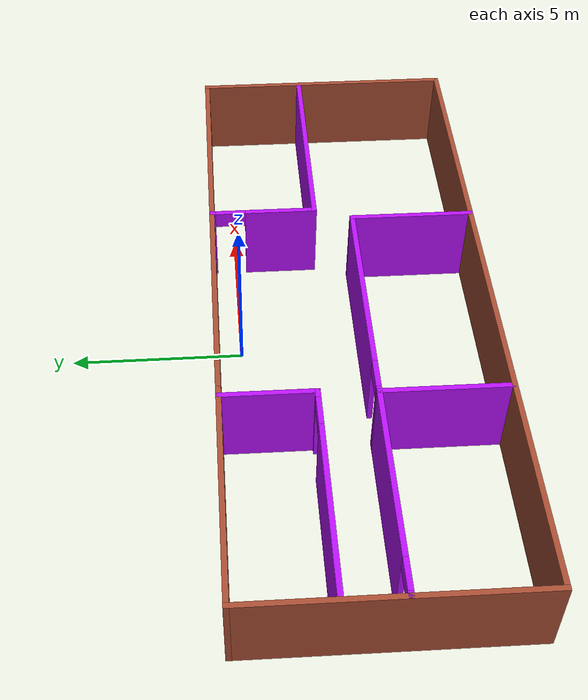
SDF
<?xml version='1.0'?>
<sdf version='1.6'>
  <model name='myroom'>
    <pose frame=''>0.194113 -3.19941 0 0 -0 0</pose>
    <link name='Wall_1'>
      <collision name='Wall_1_Collision'>
        <geometry>
          <box>
            <size>8 0.15 2.5</size>
          </box>
        </geometry>
        <pose frame=''>0 0 1.25 0 -0 0</pose>
      </collision>
      <visual name='Wall_1_Visual'>
        <pose frame=''>0 0 1.25 0 -0 0</pose>
        <geometry>
          <box>
            <size>8 0.15 2.5</size>
          </box>
        </geometry>
        <material>
          <script>
            <uri>file://media/materials/scripts/gazebo.material</uri>
            <name>Gazebo/Bricks</name>
          </script>
          <ambient>1 1 1 1</ambient>
        </material>
        <meta>
          <layer>0</layer>
        </meta>
      </visual>
      <pose frame=''>-9.925 0 0 0 0 -1.5708</pose>
    </link>
    <link name='Wall_10'>
      <pose frame=''>-6.78002 1.30489 0 0 -0 3.14159</pose>
      <visual name='Wall_10_Visual_0'>
        <pose frame=''>-2.98063 0 1.25 0 -0 0</pose>
        <geometry>
          <box>
            <size>0.288748 0.15 2.5</size>
          </box>
        </geometry>
        <material>
          <script>
            <uri>file://media/materials/scripts/gazebo.material</uri>
            <name>Gazebo/Grey</name>
          </script>
          <ambient>0.721569 0.0627451 1 1</ambient>
        </material>
        <meta>
          <layer>0</layer>
        </meta>
      </visual>
      <collision name='Wall_10_Collision_0'>
        <geometry>
          <box>
            <size>0.288748 0.15 2.5</size>
          </box>
        </geometry>
        <pose frame=''>-2.98063 0 1.25 0 -0 0</pose>
      </collision>
      <visual name='Wall_10_Visual_1'>
        <pose frame=''>0.594374 0 1.25 0 -0 0</pose>
        <geometry>
          <box>
            <size>5.06125 0.15 2.5</size>
          </box>
        </geometry>
        <material>
          <script>
            <uri>file://media/materials/scripts/gazebo.material</uri>
            <name>Gazebo/Grey</name>
          </script>
          <ambient>0.721569 0.0627451 1 1</ambient>
        </material>
        <meta>
          <layer>0</layer>
        </meta>
      </visual>
      <collision name='Wall_10_Collision_1'>
        <geometry>
          <box>
            <size>5.06125 0.15 2.5</size>
          </box>
        </geometry>
        <pose frame=''>0.594374 0 1.25 0 -0 0</pose>
      </collision>
      <visual name='Wall_10_Visual_2'>
        <pose frame=''>-2.38625 0 2.25 0 -0 0</pose>
        <geometry>
          <box>
            <size>0.9 0.15 0.5</size>
          </box>
        </geometry>
        <material>
          <script>
            <uri>file://media/materials/scripts/gazebo.material</uri>
            <name>Gazebo/Grey</name>
          </script>
          <ambient>0.721569 0.0627451 1 1</ambient>
        </material>
        <meta>
          <layer>0</layer>
        </meta>
      </visual>
      <collision name='Wall_10_Collision_2'>
        <geometry>
          <box>
            <size>0.9 0.15 0.5</size>
          </box>
        </geometry>
        <pose frame=''>-2.38625 0 2.25 0 -0 0</pose>
      </collision>
    </link>
    <link name='Wall_12'>
      <pose frame=''>-0.4 -0.318964 0 0 -0 0</pose>
      <visual name='Wall_12_Visual_0'>
        <pose frame=''>-3.37853 0 1.25 0 -0 0</pose>
        <geometry>
          <box>
            <size>0.242933 0.15 2.5</size>
          </box>
        </geometry>
        <material>
          <script>
            <uri>file://media/materials/scripts/gazebo.material</uri>
            <name>Gazebo/Grey</name>
          </script>
          <ambient>0.721569 0.0627451 1 1</ambient>
        </material>
        <meta>
          <layer>0</layer>
        </meta>
      </visual>
      <collision name='Wall_12_Collision_0'>
        <geometry>
          <box>
            <size>0.242933 0.15 2.5</size>
          </box>
        </geometry>
        <pose frame=''>-3.37853 0 1.25 0 -0 0</pose>
      </collision>
      <visual name='Wall_12_Visual_1'>
        <pose frame=''>0.571467 0 1.25 0 -0 0</pose>
        <geometry>
          <box>
            <size>5.85707 0.15 2.5</size>
          </box>
        </geometry>
        <material>
          <script>
            <uri>file://media/materials/scripts/gazebo.material</uri>
            <name>Gazebo/Grey</name>
          </script>
          <ambient>0.721569 0.0627451 1 1</ambient>
        </material>
        <meta>
          <layer>0</layer>
        </meta>
      </visual>
      <collision name='Wall_12_Collision_1'>
        <geometry>
          <box>
            <size>5.85707 0.15 2.5</size>
          </box>
        </geometry>
        <pose frame=''>0.571467 0 1.25 0 -0 0</pose>
      </collision>
      <visual name='Wall_12_Visual_2'>
        <pose frame=''>-2.80707 0 2.25 0 -0 0</pose>
        <geometry>
          <box>
            <size>0.9 0.15 0.5</size>
          </box>
        </geometry>
        <material>
          <script>
            <uri>file://media/materials/scripts/gazebo.material</uri>
            <name>Gazebo/Grey</name>
          </script>
          <ambient>0.721569 0.0627451 1 1</ambient>
        </material>
        <meta>
          <layer>0</layer>
        </meta>
      </visual>
      <collision name='Wall_12_Collision_2'>
        <geometry>
          <box>
            <size>0.9 0.15 0.5</size>
          </box>
        </geometry>
        <pose frame=''>-2.80707 0 2.25 0 -0 0</pose>
      </collision>
    </link>
    <link name='Wall_13'>
      <collision name='Wall_13_Collision'>
        <geometry>
          <box>
            <size>3.75 0.15 2.5</size>
          </box>
        </geometry>
        <pose frame=''>0 0 1.25 0 -0 0</pose>
      </collision>
      <visual name='Wall_13_Visual'>
        <pose frame=''>0 0 1.25 0 -0 0</pose>
        <geometry>
          <box>
            <size>3.75 0.15 2.5</size>
          </box>
        </geometry>
        <material>
          <script>
            <uri>file://media/materials/scripts/gazebo.material</uri>
            <name>Gazebo/Grey</name>
          </script>
          <ambient>0.721569 0.0627451 1 1</ambient>
        </material>
        <meta>
          <layer>0</layer>
        </meta>
      </visual>
      <pose frame=''>3.025 -2.11896 0 0 0 -1.5708</pose>
    </link>
    <link name='Wall_15'>
      <pose frame=''>3.45052 2.35489 0 0 0 -1.5708</pose>
      <visual name='Wall_15_Visual_0'>
        <pose frame=''>-1.54097 0 1.25 0 -0 0</pose>
        <geometry>
          <box>
            <size>0.168066 0.15 2.5</size>
          </box>
        </geometry>
        <material>
          <script>
            <uri>file://media/materials/scripts/gazebo.material</uri>
            <name>Gazebo/Grey</name>
          </script>
          <ambient>0.721569 0.0627451 1 1</ambient>
        </material>
        <meta>
          <layer>0</layer>
        </meta>
      </visual>
      <collision name='Wall_15_Collision_0'>
        <geometry>
          <box>
            <size>0.168066 0.15 2.5</size>
          </box>
        </geometry>
        <pose frame=''>-1.54097 0 1.25 0 -0 0</pose>
      </collision>
      <visual name='Wall_15_Visual_1'>
        <pose frame=''>0.534033 0 1.25 0 -0 0</pose>
        <geometry>
          <box>
            <size>2.18193 0.15 2.5</size>
          </box>
        </geometry>
        <material>
          <script>
            <uri>file://media/materials/scripts/gazebo.material</uri>
            <name>Gazebo/Grey</name>
          </script>
          <ambient>0.721569 0.0627451 1 1</ambient>
        </material>
        <meta>
          <layer>0</layer>
        </meta>
      </visual>
      <collision name='Wall_15_Collision_1'>
        <geometry>
          <box>
            <size>2.18193 0.15 2.5</size>
          </box>
        </geometry>
        <pose frame=''>0.534033 0 1.25 0 -0 0</pose>
      </collision>
      <visual name='Wall_15_Visual_2'>
        <pose frame=''>-1.00693 0 2.25 0 -0 0</pose>
        <geometry>
          <box>
            <size>0.9 0.15 0.5</size>
          </box>
        </geometry>
        <material>
          <script>
            <uri>file://media/materials/scripts/gazebo.material</uri>
            <name>Gazebo/Grey</name>
          </script>
          <ambient>0.721569 0.0627451 1 1</ambient>
        </material>
        <meta>
          <layer>0</layer>
        </meta>
      </visual>
      <collision name='Wall_15_Collision_2'>
        <geometry>
          <box>
            <size>0.9 0.15 0.5</size>
          </box>
        </geometry>
        <pose frame=''>-1.00693 0 2.25 0 -0 0</pose>
      </collision>
    </link>
    <link name='Wall_16'>
      <collision name='Wall_16_Collision'>
        <geometry>
          <box>
            <size>6.5 0.15 2.5</size>
          </box>
        </geometry>
        <pose frame=''>0 0 1.25 0 -0 0</pose>
      </collision>
      <visual name='Wall_16_Visual'>
        <pose frame=''>0 0 1.25 0 -0 0</pose>
        <geometry>
          <box>
            <size>6.5 0.15 2.5</size>
          </box>
        </geometry>
        <material>
          <script>
            <uri>file://media/materials/scripts/gazebo.material</uri>
            <name>Gazebo/Grey</name>
          </script>
          <ambient>0.721569 0.0627451 1 1</ambient>
        </material>
        <meta>
          <layer>0</layer>
        </meta>
      </visual>
      <pose frame=''>6.62552 0.804886 0 0 -0 0</pose>
    </link>
    <link name='Wall_2'>
      <collision name='Wall_2_Collision'>
        <geometry>
          <box>
            <size>20 0.15 2.5</size>
          </box>
        </geometry>
        <pose frame=''>0 0 1.25 0 -0 0</pose>
      </collision>
      <visual name='Wall_2_Visual'>
        <pose frame=''>0 0 1.25 0 -0 0</pose>
        <geometry>
          <box>
            <size>20 0.15 2.5</size>
          </box>
        </geometry>
        <material>
          <script>
            <uri>file://media/materials/scripts/gazebo.material</uri>
            <name>Gazebo/Bricks</name>
          </script>
          <ambient>1 1 1 1</ambient>
        </material>
        <meta>
          <layer>0</layer>
        </meta>
      </visual>
      <pose frame=''>0 -3.925 0 0 -0 0</pose>
    </link>
    <link name='Wall_3'>
      <collision name='Wall_3_Collision'>
        <geometry>
          <box>
            <size>8 0.15 2.5</size>
          </box>
        </geometry>
        <pose frame=''>0 0 1.25 0 -0 0</pose>
      </collision>
      <visual name='Wall_3_Visual'>
        <pose frame=''>0 0 1.25 0 -0 0</pose>
        <geometry>
          <box>
            <size>8 0.15 2.5</size>
          </box>
        </geometry>
        <material>
          <script>
            <uri>file://media/materials/scripts/gazebo.material</uri>
            <name>Gazebo/Bricks</name>
          </script>
          <ambient>1 1 1 1</ambient>
        </material>
        <meta>
          <layer>0</layer>
        </meta>
      </visual>
      <pose frame=''>9.925 0 0 0 -0 1.5708</pose>
    </link>
    <link name='Wall_4'>
      <pose frame=''>0 3.925 0 0 -0 3.14159</pose>
      <visual name='Wall_4_Visual_0'>
        <pose frame=''>-3.74215 0 1.25 0 -0 0</pose>
        <geometry>
          <box>
            <size>12.5157 0.15 2.5</size>
          </box>
        </geometry>
        <material>
          <script>
            <uri>file://media/materials/scripts/gazebo.material</uri>
            <name>Gazebo/Bricks</name>
          </script>
          <ambient>1 1 1 1</ambient>
        </material>
        <meta>
          <layer>0</layer>
        </meta>
      </visual>
      <collision name='Wall_4_Collision_0'>
        <geometry>
          <box>
            <size>12.5157 0.15 2.5</size>
          </box>
        </geometry>
        <pose frame=''>-3.74215 0 1.25 0 -0 0</pose>
      </collision>
      <visual name='Wall_4_Visual_1'>
        <pose frame=''>6.70785 0 1.25 0 -0 0</pose>
        <geometry>
          <box>
            <size>6.5843 0.15 2.5</size>
          </box>
        </geometry>
        <material>
          <script>
            <uri>file://media/materials/scripts/gazebo.material</uri>
            <name>Gazebo/Bricks</name>
          </script>
          <ambient>1 1 1 1</ambient>
        </material>
        <meta>
          <layer>0</layer>
        </meta>
      </visual>
      <collision name='Wall_4_Collision_1'>
        <geometry>
          <box>
            <size>6.5843 0.15 2.5</size>
          </box>
        </geometry>
        <pose frame=''>6.70785 0 1.25 0 -0 0</pose>
      </collision>
      <visual name='Wall_4_Visual_2'>
        <pose frame=''>2.9657 0 2.25 0 -0 0</pose>
        <geometry>
          <box>
            <size>0.9 0.15 0.5</size>
          </box>
        </geometry>
        <material>
          <script>
            <uri>file://media/materials/scripts/gazebo.material</uri>
            <name>Gazebo/Bricks</name>
          </script>
          <ambient>1 1 1 1</ambient>
        </material>
        <meta>
          <layer>0</layer>
        </meta>
      </visual>
      <collision name='Wall_4_Collision_2'>
        <geometry>
          <box>
            <size>0.9 0.15 0.5</size>
          </box>
        </geometry>
        <pose frame=''>2.9657 0 2.25 0 -0 0</pose>
      </collision>
    </link>
    <link name='Wall_6'>
      <pose frame=''>-6.875 -0.318964 0 0 -0 0</pose>
      <visual name='Wall_6_Visual_0'>
        <pose frame=''>-3.02085 0 1.25 0 -0 0</pose>
        <geometry>
          <box>
            <size>0.208294 0.15 2.5</size>
          </box>
        </geometry>
        <material>
          <script>
            <uri>file://media/materials/scripts/gazebo.material</uri>
            <name>Gazebo/Grey</name>
          </script>
          <ambient>0.721569 0.0627451 1 1</ambient>
        </material>
        <meta>
          <layer>0</layer>
        </meta>
      </visual>
      <collision name='Wall_6_Collision_0'>
        <geometry>
          <box>
            <size>0.208294 0.15 2.5</size>
          </box>
        </geometry>
        <pose frame=''>-3.02085 0 1.25 0 -0 0</pose>
      </collision>
      <visual name='Wall_6_Visual_1'>
        <pose frame=''>0.554147 0 1.25 0 -0 0</pose>
        <geometry>
          <box>
            <size>5.14171 0.15 2.5</size>
          </box>
        </geometry>
        <material>
          <script>
            <uri>file://media/materials/scripts/gazebo.material</uri>
            <name>Gazebo/Grey</name>
          </script>
          <ambient>0.721569 0.0627451 1 1</ambient>
        </material>
        <meta>
          <layer>0</layer>
        </meta>
      </visual>
      <collision name='Wall_6_Collision_1'>
        <geometry>
          <box>
            <size>5.14171 0.15 2.5</size>
          </box>
        </geometry>
        <pose frame=''>0.554147 0 1.25 0 -0 0</pose>
      </collision>
      <visual name='Wall_6_Visual_2'>
        <pose frame=''>-2.46671 0 2.25 0 -0 0</pose>
        <geometry>
          <box>
            <size>0.9 0.15 0.5</size>
          </box>
        </geometry>
        <material>
          <script>
            <uri>file://media/materials/scripts/gazebo.material</uri>
            <name>Gazebo/Grey</name>
          </script>
          <ambient>0.721569 0.0627451 1 1</ambient>
        </material>
        <meta>
          <layer>0</layer>
        </meta>
      </visual>
      <collision name='Wall_6_Collision_2'>
        <geometry>
          <box>
            <size>0.9 0.15 0.5</size>
          </box>
        </geometry>
        <pose frame=''>-2.46671 0 2.25 0 -0 0</pose>
      </collision>
    </link>
    <link name='Wall_7'>
      <collision name='Wall_7_Collision'>
        <geometry>
          <box>
            <size>3.75 0.15 2.5</size>
          </box>
        </geometry>
        <pose frame=''>0 0 1.25 0 -0 0</pose>
      </collision>
      <visual name='Wall_7_Visual'>
        <pose frame=''>0 0 1.25 0 -0 0</pose>
        <geometry>
          <box>
            <size>3.75 0.15 2.5</size>
          </box>
        </geometry>
        <material>
          <script>
            <uri>file://media/materials/scripts/gazebo.material</uri>
            <name>Gazebo/Grey</name>
          </script>
          <ambient>0.721569 0.0627451 1 1</ambient>
        </material>
        <meta>
          <layer>0</layer>
        </meta>
      </visual>
      <pose frame=''>-3.825 -2.11896 0 0 0 -1.5708</pose>
    </link>
    <link name='Wall_9'>
      <collision name='Wall_9_Collision'>
        <geometry>
          <box>
            <size>2.75 0.15 2.5</size>
          </box>
        </geometry>
        <pose frame=''>0 0 1.25 0 -0 0</pose>
      </collision>
      <visual name='Wall_9_Visual'>
        <pose frame=''>0 0 1.25 0 -0 0</pose>
        <geometry>
          <box>
            <size>2.75 0.15 2.5</size>
          </box>
        </geometry>
        <material>
          <script>
            <uri>file://media/materials/scripts/gazebo.material</uri>
            <name>Gazebo/Grey</name>
          </script>
          <ambient>0.721569 0.0627451 1 1</ambient>
        </material>
        <meta>
          <layer>0</layer>
        </meta>
      </visual>
      <pose frame=''>-3.73002 2.60489 0 0 0 -1.5708</pose>
    </link>
    <static>1</static>
  </model>
</sdf>
